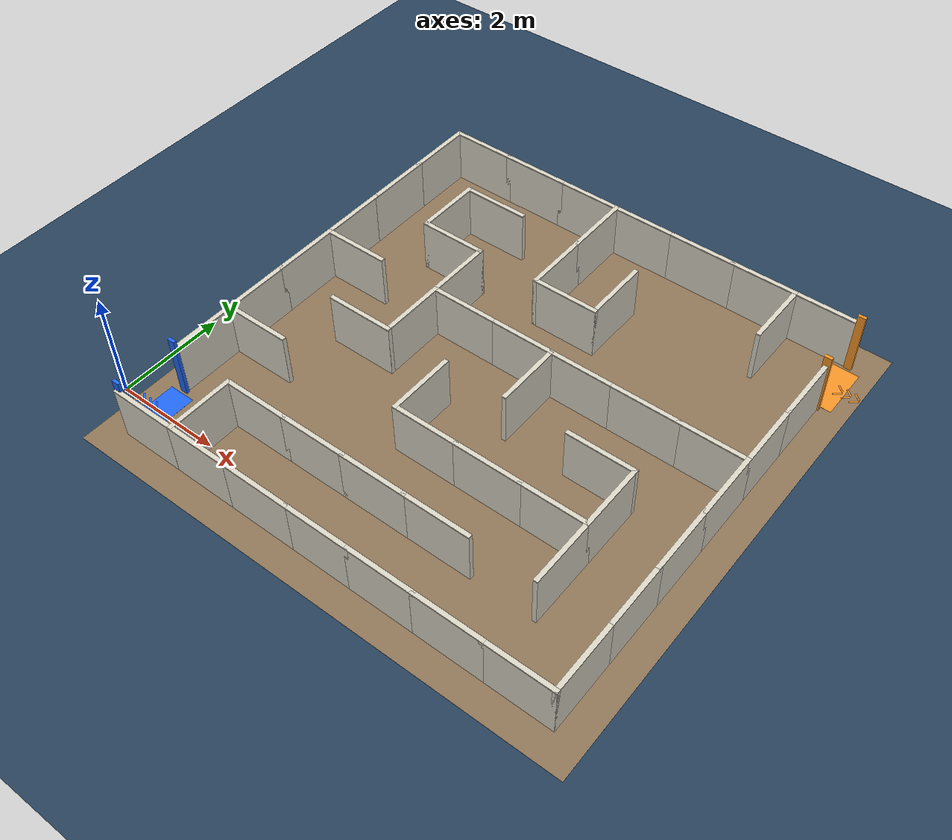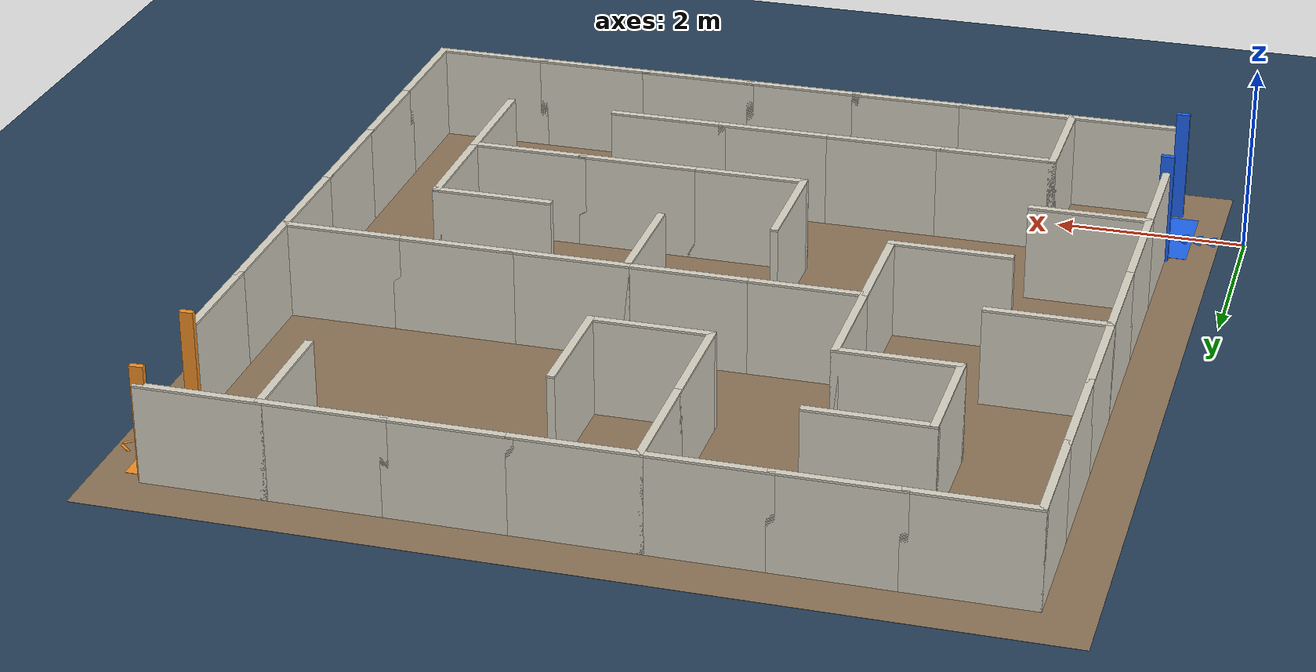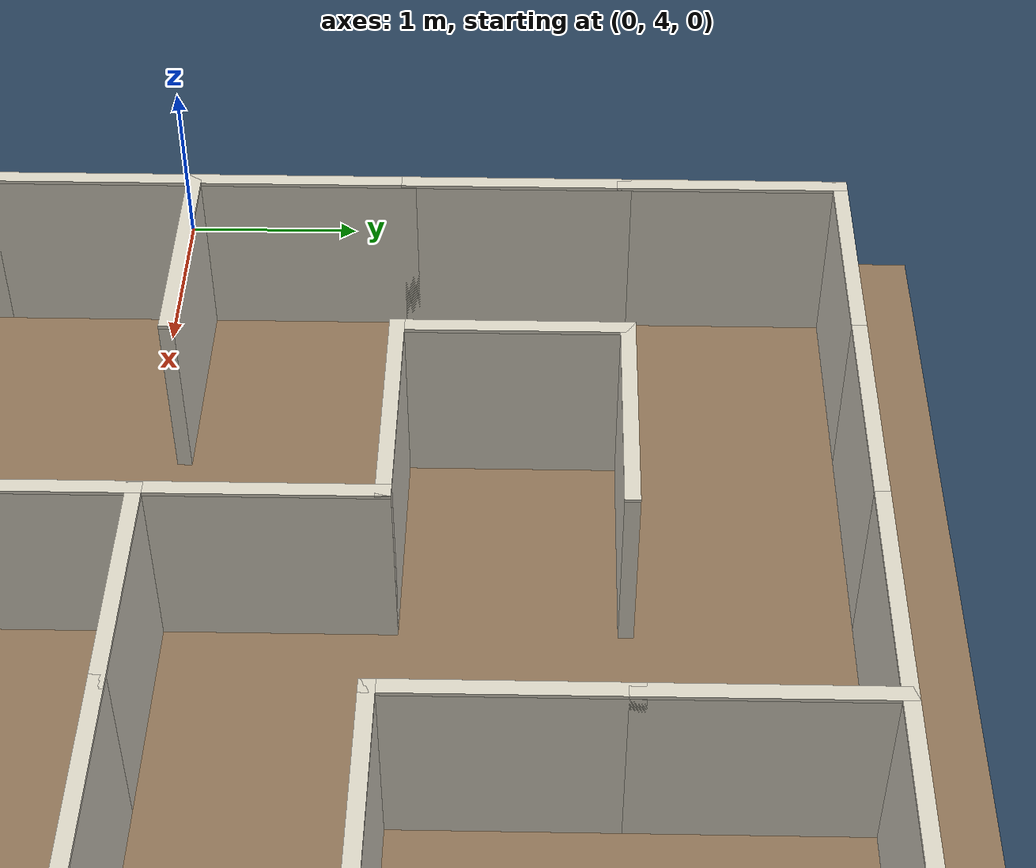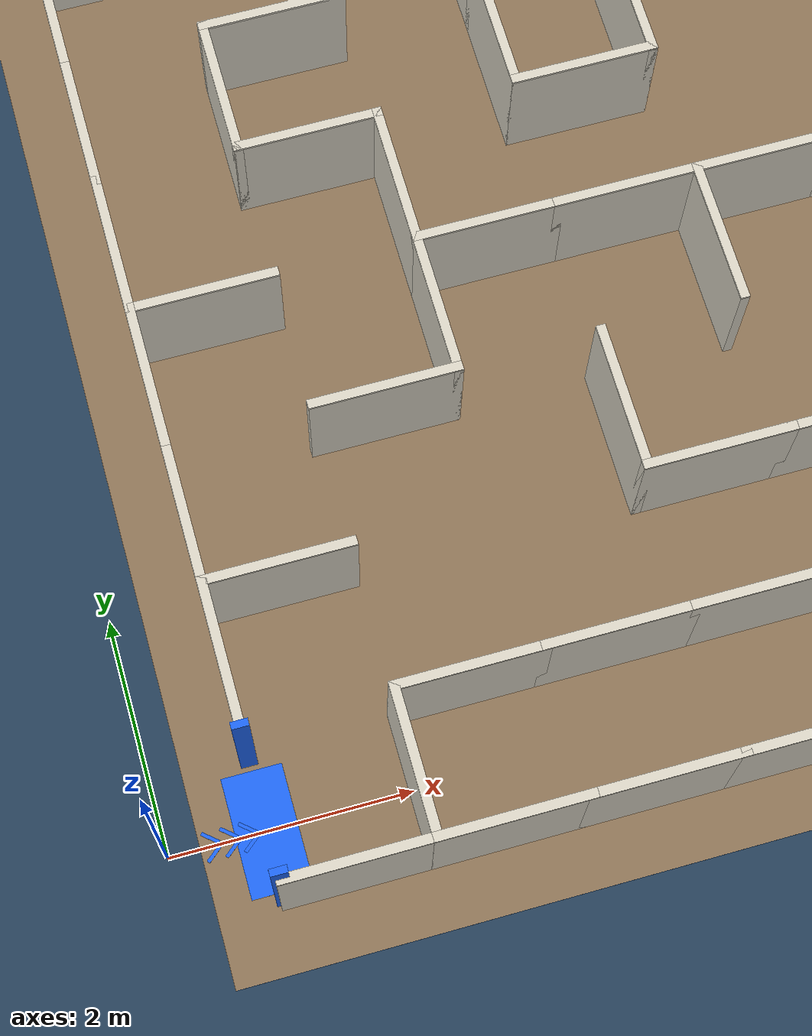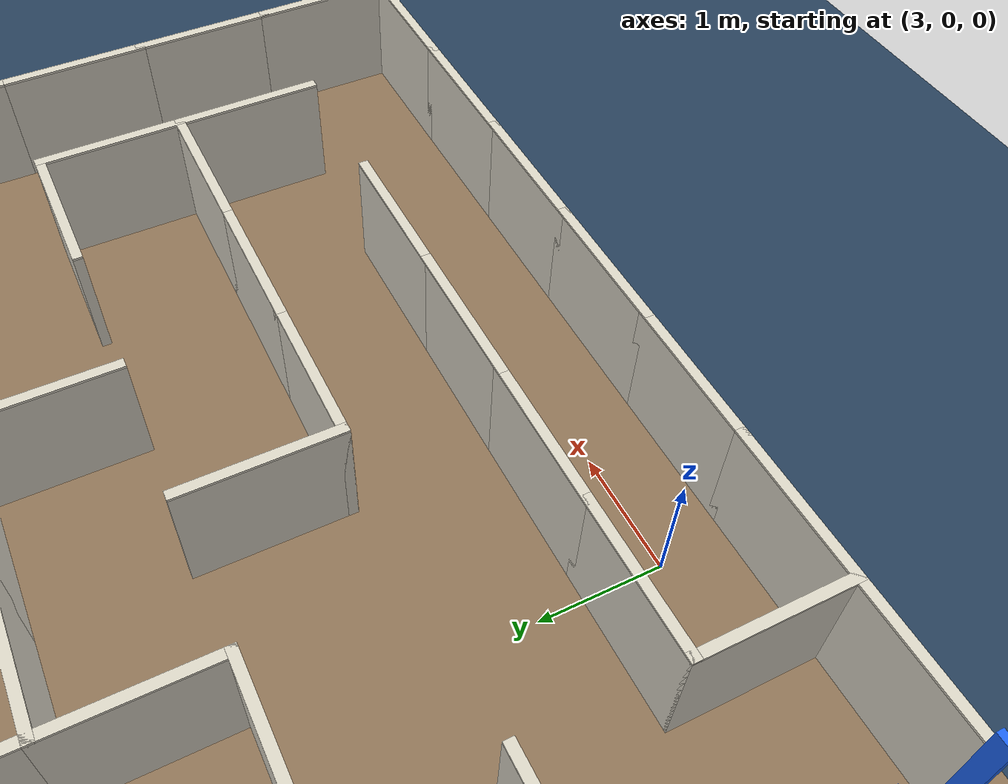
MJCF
<mujoco model="lekiwi_maze">
  <!--7 x 7 cells, 1.2 m pitch, 0.08 m walls. Entry west at y=0; exit east at y=7.2. Robot spawns outside at (0,0). Two 2 x 2 cell clearings.-->
  <statistic center="5 3.6 .3" extent="7" />
  <visual>
    <headlight diffuse=".65 .65 .65" ambient=".35 .35 .35" />
    <global azimuth="135" elevation="-65" offwidth="1440" offheight="1080" />
  </visual>
  <asset>
    <material name="maze_wall" rgba=".85 .83 .77 1" />
    <material name="maze_cap" rgba=".85 .83 .77 1" />
    <material name="maze_entry" rgba=".12 .4 .95 1" />
    <material name="maze_exit" rgba=".95 .57 .15 1" />
    <texture name="maze_tiles" type="2d" builtin="checker" rgb1=".53 .43 .32" rgb2=".58 .48 .36" width="512" height="512" />
    <material name="maze_floor" texture="maze_tiles" texrepeat="2 .5" texuniform="true" reflectance=".03" />
    <texture type="skybox" builtin="gradient" rgb1="0.3 0.5 0.7" rgb2="0 0 0" width="512" height="3072" />
    <texture type="2d" name="groundplane" builtin="checker" mark="edge" rgb1="0.2 0.3 0.4" rgb2="0.1 0.2 0.3" markrgb="0.8 0.8 0.8" width="300" height="300" />
    <material name="groundplane" texture="groundplane" texuniform="true" texrepeat="5 5" reflectance="0.2" />
  </asset>
  <worldbody>
    <light pos="2 1 8" dir="0 0 -1" directional="true" />
    <camera name="maze_top" pos="5 3.6 16" xyaxes="1 0 0 0 1 0" />
    <camera name="maze_overview" pos="14 -9 15" xyaxes=".8137 .5813 0 -.4336 .6071 .6659" />
    <geom name="floor" type="plane" size="0 0 .05" material="groundplane" friction=".4 .005 .0001" />
    <!--Visual-only maze finish ends 0.5 m beyond the outer wall faces; infinite standard floor supplies all contacts.-->
    <geom name="maze_floor_finish" type="box" pos="5 3.6 0" size="4.74 4.74 .001" material="maze_floor" contype="0" conaffinity="0" group="2" />
    <geom name="maze_wall_v_0_1" type="box" pos="0.8 1.1999999999999997 0.5" size="0.04 0.64 0.5" material="maze_wall" />
    <geom name="maze_wall_v_0_1_cap" type="box" pos="0.8 1.1999999999999997 1.01" size="0.04 0.64 0.01" material="maze_cap" contype="0" conaffinity="0" group="2" />
    <geom name="maze_wall_v_0_2" type="box" pos="0.8 2.4 0.5" size="0.04 0.64 0.5" material="maze_wall" />
    <geom name="maze_wall_v_0_2_cap" type="box" pos="0.8 2.4 1.01" size="0.04 0.64 0.01" material="maze_cap" contype="0" conaffinity="0" group="2" />
    <geom name="maze_wall_v_0_3" type="box" pos="0.8 3.6 0.5" size="0.04 0.64 0.5" material="maze_wall" />
    <geom name="maze_wall_v_0_3_cap" type="box" pos="0.8 3.6 1.01" size="0.04 0.64 0.01" material="maze_cap" contype="0" conaffinity="0" group="2" />
    <geom name="maze_wall_v_0_4" type="box" pos="0.8 4.8 0.5" size="0.04 0.64 0.5" material="maze_wall" />
    <geom name="maze_wall_v_0_4_cap" type="box" pos="0.8 4.8 1.01" size="0.04 0.64 0.01" material="maze_cap" contype="0" conaffinity="0" group="2" />
    <geom name="maze_wall_v_0_5" type="box" pos="0.8 6.0 0.5" size="0.04 0.64 0.5" material="maze_wall" />
    <geom name="maze_wall_v_0_5_cap" type="box" pos="0.8 6.0 1.01" size="0.04 0.64 0.01" material="maze_cap" contype="0" conaffinity="0" group="2" />
    <geom name="maze_wall_v_0_6" type="box" pos="0.8 7.2 0.5" size="0.04 0.64 0.5" material="maze_wall" />
    <geom name="maze_wall_v_0_6_cap" type="box" pos="0.8 7.2 1.01" size="0.04 0.64 0.01" material="maze_cap" contype="0" conaffinity="0" group="2" />
    <geom name="maze_wall_v_1_0" type="box" pos="2.0 0.0 0.5" size="0.04 0.64 0.5" material="maze_wall" />
    <geom name="maze_wall_v_1_0_cap" type="box" pos="2.0 0.0 1.01" size="0.04 0.64 0.01" material="maze_cap" contype="0" conaffinity="0" group="2" />
    <geom name="maze_wall_v_1_5" type="box" pos="2.0 6.0 0.5" size="0.04 0.64 0.5" material="maze_wall" />
    <geom name="maze_wall_v_1_5_cap" type="box" pos="2.0 6.0 1.01" size="0.04 0.64 0.01" material="maze_cap" contype="0" conaffinity="0" group="2" />
    <geom name="maze_wall_v_2_3" type="box" pos="3.2 3.6 0.5" size="0.04 0.64 0.5" material="maze_wall" />
    <geom name="maze_wall_v_2_3_cap" type="box" pos="3.2 3.6 1.01" size="0.04 0.64 0.01" material="maze_cap" contype="0" conaffinity="0" group="2" />
    <geom name="maze_wall_v_2_4" type="box" pos="3.2 4.8 0.5" size="0.04 0.64 0.5" material="maze_wall" />
    <geom name="maze_wall_v_2_4_cap" type="box" pos="3.2 4.8 1.01" size="0.04 0.64 0.01" material="maze_cap" contype="0" conaffinity="0" group="2" />
    <geom name="maze_wall_v_3_2" type="box" pos="4.3999999999999995 2.4 0.5" size="0.04 0.64 0.5" material="maze_wall" />
    <geom name="maze_wall_v_3_2_cap" type="box" pos="4.3999999999999995 2.4 1.01" size="0.04 0.64 0.01" material="maze_cap" contype="0" conaffinity="0" group="2" />
    <geom name="maze_wall_v_3_5" type="box" pos="4.3999999999999995 6.0 0.5" size="0.04 0.64 0.5" material="maze_wall" />
    <geom name="maze_wall_v_3_5_cap" type="box" pos="4.3999999999999995 6.0 1.01" size="0.04 0.64 0.01" material="maze_cap" contype="0" conaffinity="0" group="2" />
    <geom name="maze_wall_v_3_6" type="box" pos="4.3999999999999995 7.2 0.5" size="0.04 0.64 0.5" material="maze_wall" />
    <geom name="maze_wall_v_3_6_cap" type="box" pos="4.3999999999999995 7.2 1.01" size="0.04 0.64 0.01" material="maze_cap" contype="0" conaffinity="0" group="2" />
    <geom name="maze_wall_v_4_3" type="box" pos="5.6 3.6 0.5" size="0.04 0.64 0.5" material="maze_wall" />
    <geom name="maze_wall_v_4_3_cap" type="box" pos="5.6 3.6 1.01" size="0.04 0.64 0.01" material="maze_cap" contype="0" conaffinity="0" group="2" />
    <geom name="maze_wall_v_4_5" type="box" pos="5.6 6.0 0.5" size="0.04 0.64 0.5" material="maze_wall" />
    <geom name="maze_wall_v_4_5_cap" type="box" pos="5.6 6.0 1.01" size="0.04 0.64 0.01" material="maze_cap" contype="0" conaffinity="0" group="2" />
    <geom name="maze_wall_v_6_1" type="box" pos="7.999999999999999 1.1999999999999997 0.5" size="0.04 0.64 0.5" material="maze_wall" />
    <geom name="maze_wall_v_6_1_cap" type="box" pos="7.999999999999999 1.1999999999999997 1.01" size="0.04 0.64 0.01" material="maze_cap" contype="0" conaffinity="0" group="2" />
    <geom name="maze_wall_v_6_2" type="box" pos="7.999999999999999 2.4 0.5" size="0.04 0.64 0.5" material="maze_wall" />
    <geom name="maze_wall_v_6_2_cap" type="box" pos="7.999999999999999 2.4 1.01" size="0.04 0.64 0.01" material="maze_cap" contype="0" conaffinity="0" group="2" />
    <geom name="maze_wall_v_6_6" type="box" pos="7.999999999999999 7.2 0.5" size="0.04 0.64 0.5" material="maze_wall" />
    <geom name="maze_wall_v_6_6_cap" type="box" pos="7.999999999999999 7.2 1.01" size="0.04 0.64 0.01" material="maze_cap" contype="0" conaffinity="0" group="2" />
    <geom name="maze_wall_v_7_0" type="box" pos="9.200000000000001 0.0 0.5" size="0.04 0.64 0.5" material="maze_wall" />
    <geom name="maze_wall_v_7_0_cap" type="box" pos="9.200000000000001 0.0 1.01" size="0.04 0.64 0.01" material="maze_cap" contype="0" conaffinity="0" group="2" />
    <geom name="maze_wall_v_7_1" type="box" pos="9.200000000000001 1.1999999999999997 0.5" size="0.04 0.64 0.5" material="maze_wall" />
    <geom name="maze_wall_v_7_1_cap" type="box" pos="9.200000000000001 1.1999999999999997 1.01" size="0.04 0.64 0.01" material="maze_cap" contype="0" conaffinity="0" group="2" />
    <geom name="maze_wall_v_7_2" type="box" pos="9.200000000000001 2.4 0.5" size="0.04 0.64 0.5" material="maze_wall" />
    <geom name="maze_wall_v_7_2_cap" type="box" pos="9.200000000000001 2.4 1.01" size="0.04 0.64 0.01" material="maze_cap" contype="0" conaffinity="0" group="2" />
    <geom name="maze_wall_v_7_3" type="box" pos="9.200000000000001 3.6 0.5" size="0.04 0.64 0.5" material="maze_wall" />
    <geom name="maze_wall_v_7_3_cap" type="box" pos="9.200000000000001 3.6 1.01" size="0.04 0.64 0.01" material="maze_cap" contype="0" conaffinity="0" group="2" />
    <geom name="maze_wall_v_7_4" type="box" pos="9.200000000000001 4.8 0.5" size="0.04 0.64 0.5" material="maze_wall" />
    <geom name="maze_wall_v_7_4_cap" type="box" pos="9.200000000000001 4.8 1.01" size="0.04 0.64 0.01" material="maze_cap" contype="0" conaffinity="0" group="2" />
    <geom name="maze_wall_v_7_5" type="box" pos="9.200000000000001 6.0 0.5" size="0.04 0.64 0.5" material="maze_wall" />
    <geom name="maze_wall_v_7_5_cap" type="box" pos="9.200000000000001 6.0 1.01" size="0.04 0.64 0.01" material="maze_cap" contype="0" conaffinity="0" group="2" />
    <geom name="maze_wall_h_0_0" type="box" pos="1.4 -0.6 0.5" size="0.64 0.04 0.5" material="maze_wall" />
    <geom name="maze_wall_h_0_0_cap" type="box" pos="1.4 -0.6 1.01" size="0.64 0.04 0.01" material="maze_cap" contype="0" conaffinity="0" group="2" />
    <geom name="maze_wall_h_1_0" type="box" pos="2.5999999999999996 -0.6 0.5" size="0.64 0.04 0.5" material="maze_wall" />
    <geom name="maze_wall_h_1_0_cap" type="box" pos="2.5999999999999996 -0.6 1.01" size="0.64 0.04 0.01" material="maze_cap" contype="0" conaffinity="0" group="2" />
    <geom name="maze_wall_h_2_0" type="box" pos="3.8 -0.6 0.5" size="0.64 0.04 0.5" material="maze_wall" />
    <geom name="maze_wall_h_2_0_cap" type="box" pos="3.8 -0.6 1.01" size="0.64 0.04 0.01" material="maze_cap" contype="0" conaffinity="0" group="2" />
    <geom name="maze_wall_h_3_0" type="box" pos="5.0 -0.6 0.5" size="0.64 0.04 0.5" material="maze_wall" />
    <geom name="maze_wall_h_3_0_cap" type="box" pos="5.0 -0.6 1.01" size="0.64 0.04 0.01" material="maze_cap" contype="0" conaffinity="0" group="2" />
    <geom name="maze_wall_h_4_0" type="box" pos="6.199999999999999 -0.6 0.5" size="0.64 0.04 0.5" material="maze_wall" />
    <geom name="maze_wall_h_4_0_cap" type="box" pos="6.199999999999999 -0.6 1.01" size="0.64 0.04 0.01" material="maze_cap" contype="0" conaffinity="0" group="2" />
    <geom name="maze_wall_h_5_0" type="box" pos="7.3999999999999995 -0.6 0.5" size="0.64 0.04 0.5" material="maze_wall" />
    <geom name="maze_wall_h_5_0_cap" type="box" pos="7.3999999999999995 -0.6 1.01" size="0.64 0.04 0.01" material="maze_cap" contype="0" conaffinity="0" group="2" />
    <geom name="maze_wall_h_6_0" type="box" pos="8.6 -0.6 0.5" size="0.64 0.04 0.5" material="maze_wall" />
    <geom name="maze_wall_h_6_0_cap" type="box" pos="8.6 -0.6 1.01" size="0.64 0.04 0.01" material="maze_cap" contype="0" conaffinity="0" group="2" />
    <geom name="maze_wall_h_1_1" type="box" pos="2.5999999999999996 0.6 0.5" size="0.64 0.04 0.5" material="maze_wall" />
    <geom name="maze_wall_h_1_1_cap" type="box" pos="2.5999999999999996 0.6 1.01" size="0.64 0.04 0.01" material="maze_cap" contype="0" conaffinity="0" group="2" />
    <geom name="maze_wall_h_2_1" type="box" pos="3.8 0.6 0.5" size="0.64 0.04 0.5" material="maze_wall" />
    <geom name="maze_wall_h_2_1_cap" type="box" pos="3.8 0.6 1.01" size="0.64 0.04 0.01" material="maze_cap" contype="0" conaffinity="0" group="2" />
    <geom name="maze_wall_h_3_1" type="box" pos="5.0 0.6 0.5" size="0.64 0.04 0.5" material="maze_wall" />
    <geom name="maze_wall_h_3_1_cap" type="box" pos="5.0 0.6 1.01" size="0.64 0.04 0.01" material="maze_cap" contype="0" conaffinity="0" group="2" />
    <geom name="maze_wall_h_4_1" type="box" pos="6.199999999999999 0.6 0.5" size="0.64 0.04 0.5" material="maze_wall" />
    <geom name="maze_wall_h_4_1_cap" type="box" pos="6.199999999999999 0.6 1.01" size="0.64 0.04 0.01" material="maze_cap" contype="0" conaffinity="0" group="2" />
    <geom name="maze_wall_h_0_2" type="box" pos="1.4 1.7999999999999998 0.5" size="0.64 0.04 0.5" material="maze_wall" />
    <geom name="maze_wall_h_0_2_cap" type="box" pos="1.4 1.7999999999999998 1.01" size="0.64 0.04 0.01" material="maze_cap" contype="0" conaffinity="0" group="2" />
    <geom name="maze_wall_h_3_2" type="box" pos="5.0 1.7999999999999998 0.5" size="0.64 0.04 0.5" material="maze_wall" />
    <geom name="maze_wall_h_3_2_cap" type="box" pos="5.0 1.7999999999999998 1.01" size="0.64 0.04 0.01" material="maze_cap" contype="0" conaffinity="0" group="2" />
    <geom name="maze_wall_h_4_2" type="box" pos="6.199999999999999 1.7999999999999998 0.5" size="0.64 0.04 0.5" material="maze_wall" />
    <geom name="maze_wall_h_4_2_cap" type="box" pos="6.199999999999999 1.7999999999999998 1.01" size="0.64 0.04 0.01" material="maze_cap" contype="0" conaffinity="0" group="2" />
    <geom name="maze_wall_h_5_2" type="box" pos="7.3999999999999995 1.7999999999999998 0.5" size="0.64 0.04 0.5" material="maze_wall" />
    <geom name="maze_wall_h_5_2_cap" type="box" pos="7.3999999999999995 1.7999999999999998 1.01" size="0.64 0.04 0.01" material="maze_cap" contype="0" conaffinity="0" group="2" />
    <geom name="maze_wall_h_1_3" type="box" pos="2.5999999999999996 2.9999999999999996 0.5" size="0.64 0.04 0.5" material="maze_wall" />
    <geom name="maze_wall_h_1_3_cap" type="box" pos="2.5999999999999996 2.9999999999999996 1.01" size="0.64 0.04 0.01" material="maze_cap" contype="0" conaffinity="0" group="2" />
    <geom name="maze_wall_h_5_3" type="box" pos="7.3999999999999995 2.9999999999999996 0.5" size="0.64 0.04 0.5" material="maze_wall" />
    <geom name="maze_wall_h_5_3_cap" type="box" pos="7.3999999999999995 2.9999999999999996 1.01" size="0.64 0.04 0.01" material="maze_cap" contype="0" conaffinity="0" group="2" />
    <geom name="maze_wall_h_0_4" type="box" pos="1.4 4.2 0.5" size="0.64 0.04 0.5" material="maze_wall" />
    <geom name="maze_wall_h_0_4_cap" type="box" pos="1.4 4.2 1.01" size="0.64 0.04 0.01" material="maze_cap" contype="0" conaffinity="0" group="2" />
    <geom name="maze_wall_h_2_4" type="box" pos="3.8 4.2 0.5" size="0.64 0.04 0.5" material="maze_wall" />
    <geom name="maze_wall_h_2_4_cap" type="box" pos="3.8 4.2 1.01" size="0.64 0.04 0.01" material="maze_cap" contype="0" conaffinity="0" group="2" />
    <geom name="maze_wall_h_3_4" type="box" pos="5.0 4.2 0.5" size="0.64 0.04 0.5" material="maze_wall" />
    <geom name="maze_wall_h_3_4_cap" type="box" pos="5.0 4.2 1.01" size="0.64 0.04 0.01" material="maze_cap" contype="0" conaffinity="0" group="2" />
    <geom name="maze_wall_h_4_4" type="box" pos="6.199999999999999 4.2 0.5" size="0.64 0.04 0.5" material="maze_wall" />
    <geom name="maze_wall_h_4_4_cap" type="box" pos="6.199999999999999 4.2 1.01" size="0.64 0.04 0.01" material="maze_cap" contype="0" conaffinity="0" group="2" />
    <geom name="maze_wall_h_5_4" type="box" pos="7.3999999999999995 4.2 0.5" size="0.64 0.04 0.5" material="maze_wall" />
    <geom name="maze_wall_h_5_4_cap" type="box" pos="7.3999999999999995 4.2 1.01" size="0.64 0.04 0.01" material="maze_cap" contype="0" conaffinity="0" group="2" />
    <geom name="maze_wall_h_6_4" type="box" pos="8.6 4.2 0.5" size="0.64 0.04 0.5" material="maze_wall" />
    <geom name="maze_wall_h_6_4_cap" type="box" pos="8.6 4.2 1.01" size="0.64 0.04 0.01" material="maze_cap" contype="0" conaffinity="0" group="2" />
    <geom name="maze_wall_h_1_5" type="box" pos="2.5999999999999996 5.4 0.5" size="0.64 0.04 0.5" material="maze_wall" />
    <geom name="maze_wall_h_1_5_cap" type="box" pos="2.5999999999999996 5.4 1.01" size="0.64 0.04 0.01" material="maze_cap" contype="0" conaffinity="0" group="2" />
    <geom name="maze_wall_h_3_5" type="box" pos="5.0 5.4 0.5" size="0.64 0.04 0.5" material="maze_wall" />
    <geom name="maze_wall_h_3_5_cap" type="box" pos="5.0 5.4 1.01" size="0.64 0.04 0.01" material="maze_cap" contype="0" conaffinity="0" group="2" />
    <geom name="maze_wall_h_1_6" type="box" pos="2.5999999999999996 6.6 0.5" size="0.64 0.04 0.5" material="maze_wall" />
    <geom name="maze_wall_h_1_6_cap" type="box" pos="2.5999999999999996 6.6 1.01" size="0.64 0.04 0.01" material="maze_cap" contype="0" conaffinity="0" group="2" />
    <geom name="maze_wall_h_0_7" type="box" pos="1.4 7.800000000000001 0.5" size="0.64 0.04 0.5" material="maze_wall" />
    <geom name="maze_wall_h_0_7_cap" type="box" pos="1.4 7.800000000000001 1.01" size="0.64 0.04 0.01" material="maze_cap" contype="0" conaffinity="0" group="2" />
    <geom name="maze_wall_h_1_7" type="box" pos="2.5999999999999996 7.800000000000001 0.5" size="0.64 0.04 0.5" material="maze_wall" />
    <geom name="maze_wall_h_1_7_cap" type="box" pos="2.5999999999999996 7.800000000000001 1.01" size="0.64 0.04 0.01" material="maze_cap" contype="0" conaffinity="0" group="2" />
    <geom name="maze_wall_h_2_7" type="box" pos="3.8 7.800000000000001 0.5" size="0.64 0.04 0.5" material="maze_wall" />
    <geom name="maze_wall_h_2_7_cap" type="box" pos="3.8 7.800000000000001 1.01" size="0.64 0.04 0.01" material="maze_cap" contype="0" conaffinity="0" group="2" />
    <geom name="maze_wall_h_3_7" type="box" pos="5.0 7.800000000000001 0.5" size="0.64 0.04 0.5" material="maze_wall" />
    <geom name="maze_wall_h_3_7_cap" type="box" pos="5.0 7.800000000000001 1.01" size="0.64 0.04 0.01" material="maze_cap" contype="0" conaffinity="0" group="2" />
    <geom name="maze_wall_h_4_7" type="box" pos="6.199999999999999 7.800000000000001 0.5" size="0.64 0.04 0.5" material="maze_wall" />
    <geom name="maze_wall_h_4_7_cap" type="box" pos="6.199999999999999 7.800000000000001 1.01" size="0.64 0.04 0.01" material="maze_cap" contype="0" conaffinity="0" group="2" />
    <geom name="maze_wall_h_5_7" type="box" pos="7.3999999999999995 7.800000000000001 0.5" size="0.64 0.04 0.5" material="maze_wall" />
    <geom name="maze_wall_h_5_7_cap" type="box" pos="7.3999999999999995 7.800000000000001 1.01" size="0.64 0.04 0.01" material="maze_cap" contype="0" conaffinity="0" group="2" />
    <geom name="maze_wall_h_6_7" type="box" pos="8.6 7.800000000000001 0.5" size="0.64 0.04 0.5" material="maze_wall" />
    <geom name="maze_wall_h_6_7_cap" type="box" pos="8.6 7.800000000000001 1.01" size="0.64 0.04 0.01" material="maze_cap" contype="0" conaffinity="0" group="2" />
    <geom name="maze_entry_threshold" type="box" pos="0.8 0 0.002" size="0.25 0.5 0.001" material="maze_entry" contype="0" conaffinity="0" group="2" />
    <geom name="maze_entry_post_-0.57" type="box" pos="0.8 -0.57 0.6" size="0.07 0.03 0.6" material="maze_entry" />
    <geom name="maze_entry_post_0.57" type="box" pos="0.8 0.57 0.6" size="0.07 0.03 0.6" material="maze_entry" />
    <geom name="maze_entry_arrow_0_-1" type="box" pos="0.36 -0.065 .003" size=".08 .015 .001" material="maze_entry" contype="0" conaffinity="0" group="2" euler="0 0 40" />
    <geom name="maze_entry_arrow_0_1" type="box" pos="0.36 0.065 .003" size=".08 .015 .001" material="maze_entry" contype="0" conaffinity="0" group="2" euler="0 0 -40" />
    <geom name="maze_entry_arrow_1_-1" type="box" pos="0.51 -0.065 .003" size=".08 .015 .001" material="maze_entry" contype="0" conaffinity="0" group="2" euler="0 0 40" />
    <geom name="maze_entry_arrow_1_1" type="box" pos="0.51 0.065 .003" size=".08 .015 .001" material="maze_entry" contype="0" conaffinity="0" group="2" euler="0 0 -40" />
    <geom name="maze_entry_arrow_2_-1" type="box" pos="0.6599999999999999 -0.065 .003" size=".08 .015 .001" material="maze_entry" contype="0" conaffinity="0" group="2" euler="0 0 40" />
    <geom name="maze_entry_arrow_2_1" type="box" pos="0.6599999999999999 0.065 .003" size=".08 .015 .001" material="maze_entry" contype="0" conaffinity="0" group="2" euler="0 0 -40" />
    <geom name="maze_exit_threshold" type="box" pos="9.2 7.2 0.002" size="0.25 0.5 0.001" material="maze_exit" contype="0" conaffinity="0" group="2" />
    <geom name="maze_exit_post_6.63" type="box" pos="9.2 6.63 0.6" size="0.07 0.03 0.6" material="maze_exit" />
    <geom name="maze_exit_post_7.7700000000000005" type="box" pos="9.2 7.7700000000000005 0.6" size="0.07 0.03 0.6" material="maze_exit" />
    <geom name="maze_exit_arrow_0_-1" type="box" pos="9.34 7.135 .003" size=".08 .015 .001" material="maze_exit" contype="0" conaffinity="0" group="2" euler="0 0 40" />
    <geom name="maze_exit_arrow_0_1" type="box" pos="9.34 7.265000000000001 .003" size=".08 .015 .001" material="maze_exit" contype="0" conaffinity="0" group="2" euler="0 0 -40" />
    <geom name="maze_exit_arrow_1_-1" type="box" pos="9.49 7.135 .003" size=".08 .015 .001" material="maze_exit" contype="0" conaffinity="0" group="2" euler="0 0 40" />
    <geom name="maze_exit_arrow_1_1" type="box" pos="9.49 7.265000000000001 .003" size=".08 .015 .001" material="maze_exit" contype="0" conaffinity="0" group="2" euler="0 0 -40" />
    <geom name="maze_exit_arrow_2_-1" type="box" pos="9.64 7.135 .003" size=".08 .015 .001" material="maze_exit" contype="0" conaffinity="0" group="2" euler="0 0 40" />
    <geom name="maze_exit_arrow_2_1" type="box" pos="9.64 7.265000000000001 .003" size=".08 .015 .001" material="maze_exit" contype="0" conaffinity="0" group="2" euler="0 0 -40" />
    <site name="maze_entry" pos=".8 0 .02" size=".02" rgba="0 0 0 0" />
    <site name="maze_exit" pos="9.2 7.2 .02" size=".02" rgba="0 0 0 0" />
  </worldbody>
</mujoco>
